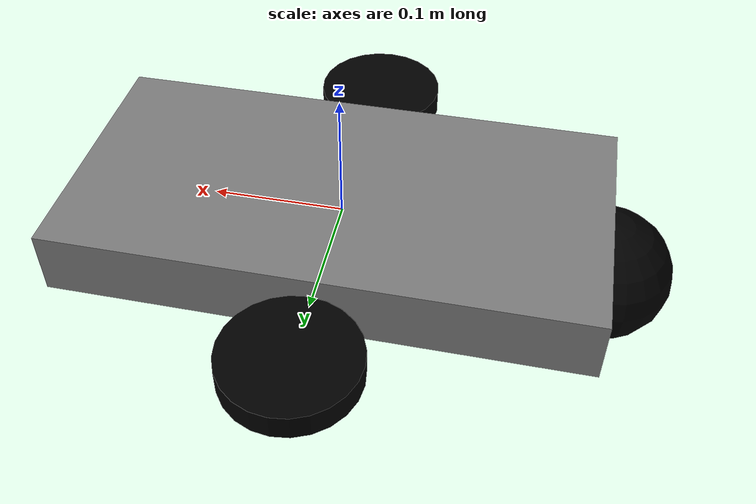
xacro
<?xml version="1.0"?>
<robot name="my_car" xmlns:xacro="http://ros.org/wiki/xacro">

  <!-- Local Params -->
  <xacro:property name="wheel_radius" value="0.05"/>
  <xacro:property name="wheel_width" value="0.02"/>
  <xacro:property name="wheel_separation" value="0.3"/>
  <xacro:property name="base_length" value="0.4"/>
  <xacro:property name="base_width" value="0.2"/>
  <xacro:property name="chassis_height" value="0.05"/>

  <!-- Materials -->
  <material name="black">
    <color rgba="0.0 0.0 0.0 1.0"/>
  </material>

  <material name="grey">
    <color rgba="0.5 0.5 0.5 1.0"/>
  </material>

  <!-- Main Loom -->
  <link name="base_link">
    <visual>
      <geometry>
        <box size="${base_length} ${base_width} ${chassis_height}"/>
      </geometry>
      <material name="grey"/>
    </visual>
    <collision>
      <geometry>
        <box size="${base_length} ${base_width} ${chassis_height}"/>
      </geometry>
    </collision>
    <inertial>
      <mass value="2.0"/>
      <inertia ixx="0.1" iyy="0.1" izz="0.1"/>
    </inertial>
  </link>

  <!-- Lefr Wheel -->
  <link name="wheel_left">
    <visual>
      <geometry>
        <cylinder radius="${wheel_radius}" length="${wheel_width}"/>
      </geometry>
      <material name="black"/>
      <origin rpy="0 0 ${pi/2}"/>
    </visual>
    <collision>
      <geometry>
        <cylinder radius="${wheel_radius}" length="${wheel_width}"/>
      </geometry>
    </collision>
    <inertial>
      <mass value="0.1"/>
      <inertia ixx="0.001" iyy="0.001" izz="0.001"/>
    </inertial>
  </link>

  <joint name="joint_wheel_left" type="continuous">
    <parent link="base_link"/>
    <child link="wheel_left"/>
    <origin xyz="0 ${wheel_separation/2} 0" rpy="0 0 0"/>
    <axis xyz="0 1 0"/>
  </joint>

  <!-- Right Wheel -->
  <link name="wheel_right">
    <visual>
      <geometry>
        <cylinder radius="${wheel_radius}" length="${wheel_width}"/>
      </geometry>
      <material name="black"/>
      <origin rpy="0 0 ${pi/2}"/>
    </visual>
    <collision>
      <geometry>
        <cylinder radius="${wheel_radius}" length="${wheel_width}"/>
      </geometry>
    </collision>
    <inertial>
      <mass value="0.1"/>
      <inertia ixx="0.001" iyy="0.001" izz="0.001"/>
    </inertial>
  </link>

  <joint name="joint_wheel_right" type="continuous">
    <parent link="base_link"/>
    <child link="wheel_right"/>
    <origin xyz="0 -${wheel_separation/2} 0" rpy="0 0 0"/>
    <axis xyz="0 1 0"/>
  </joint>

  <!-- Passive Back Wheels (caster) -->
  <link name="caster_wheel">
    <visual>
      <geometry>
        <sphere radius="0.05"/>
      </geometry>
      <material name="black"/>
    </visual>
    <collision>
      <geometry>
        <sphere radius="0.05"/>
      </geometry>
    </collision>
    <inertial>
      <mass value="0.05"/>
      <inertia ixx="0.0001" iyy="0.0001" izz="0.0001"/>
    </inertial>
  </link>

  <joint name="joint_caster" type="fixed">
    <parent link="base_link"/>
    <child link="caster_wheel"/>
    <origin xyz="-${base_length/2} 0 -0.025" rpy="0 0 0"/>
  </joint>

  <!-- Plugins -->
<gazebo>
  <plugin name="diff_drive_controller" filename="libgazebo_ros_diff_drive.so">
    <ros>
      <namespace>/</namespace>
      <remapping>cmd_vel:=/cmd_vel</remapping>
      <remapping>odom:=/odom</remapping>
    </ros>
    <commandTimeout>1.0</commandTimeout>
    <wheelSeparation>${wheel_separation}</wheelSeparation>
    <wheelDiameter>${2 * wheel_radius}</wheelDiameter>
    <wheelAcceleration>0.0</wheelAcceleration>
    <wheelTorque>5.0</wheelTorque>
    <updateRate>50.0</updateRate>
    <leftJoint>joint_wheel_left</leftJoint>
    <rightJoint>joint_wheel_right</rightJoint>
    <publishOdom>true</publishOdom>
    <odomFrame>odom</odomFrame>
    <odomTopic>odom</odomTopic>
    <robotBaseFrame>base_link</robotBaseFrame>
  </plugin>
</gazebo>

</robot>
